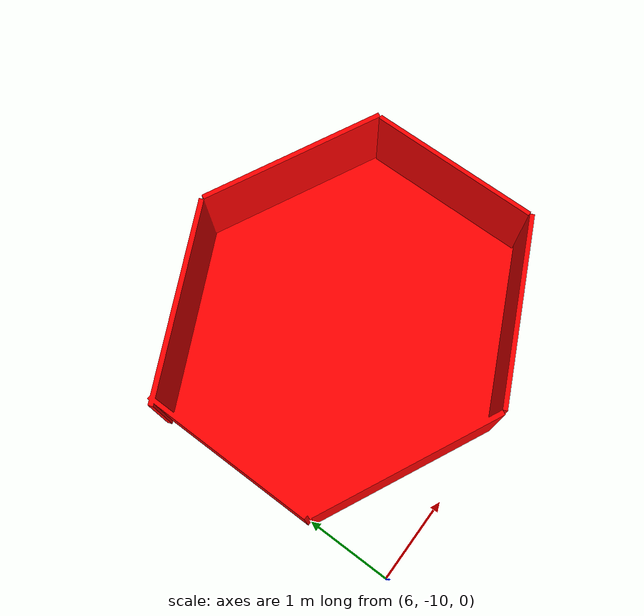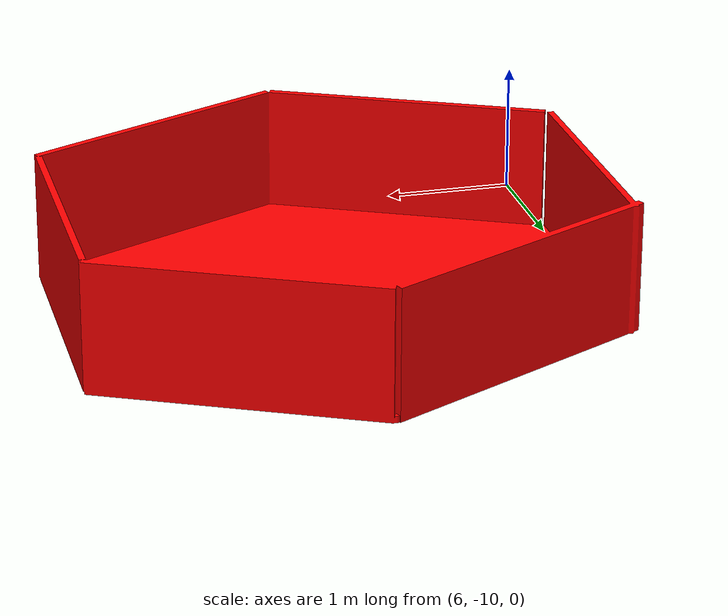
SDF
<?xml version="1.0"?>
<sdf version="1.6">
  <model name="red_hexagon">
    <static>true</static>

    <link name="link">

      <!-- MESH -->
      <visual name="visual">
        <geometry>
          <mesh>
            <uri>model://red_hexagon/meshes/hexagon.stl</uri>
            <scale>1 1 1</scale>
          </mesh>
        </geometry>

        <!-- MATERIAL -->
        <material>
          <!-- Red on Ambient Lightning -->
          <ambient>1 0 0 1</ambient>
          <!-- Perfect Red on Camera -->
          <diffuse>1 0 0 1</diffuse>
          <!-- Prevents Reflections -->
          <specular>0 0 0 1</specular>
        </material>
      </visual>

      <!-- COLLISION -->
      <collision name="collision">
        <geometry>
          <cylinder>
            <radius>0.15</radius>
            <length>0.02</length>
          </cylinder>
        </geometry>
      </collision>

    </link>
  </model>
</sdf>
